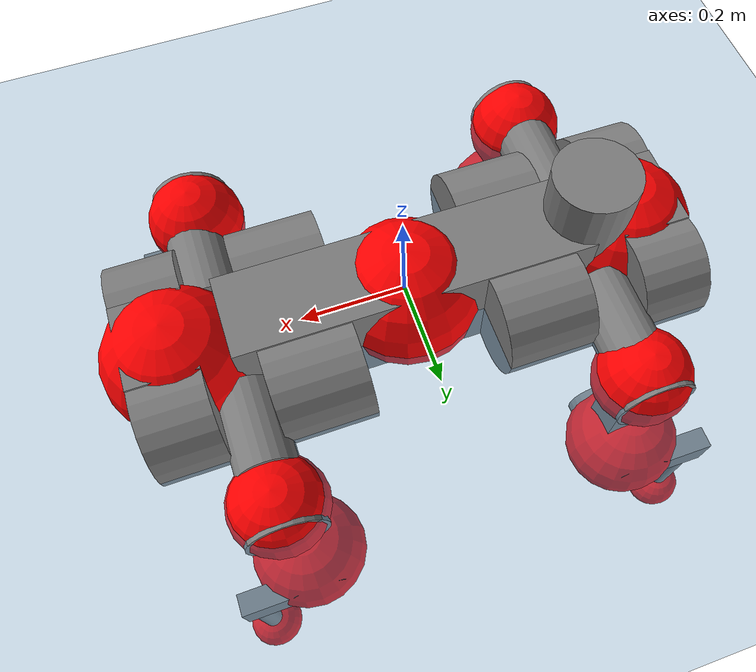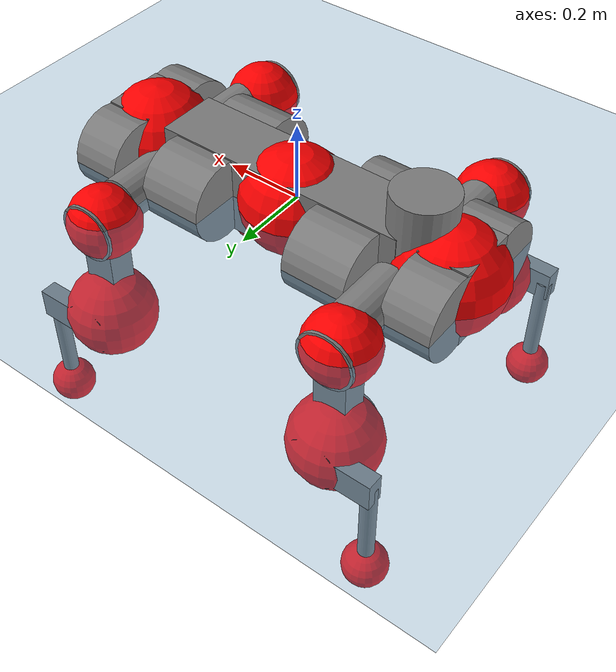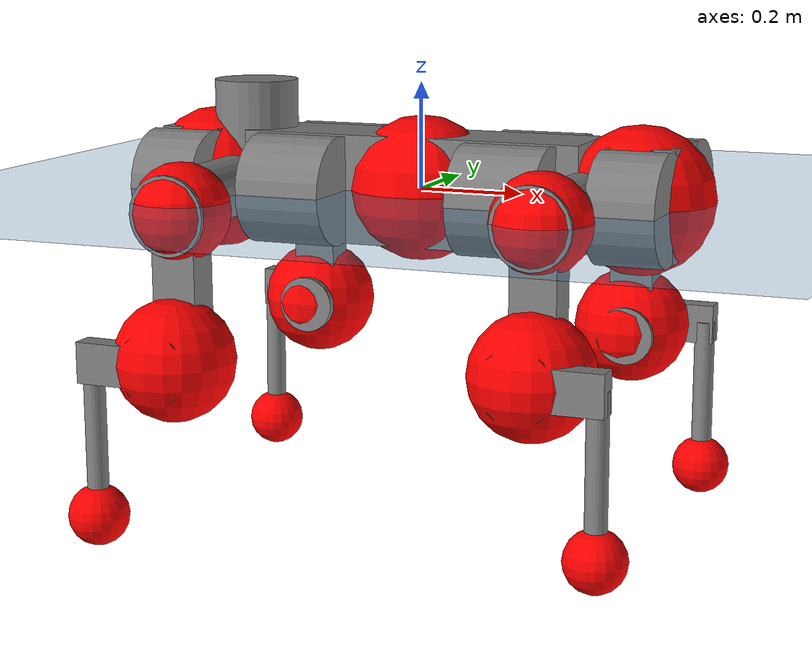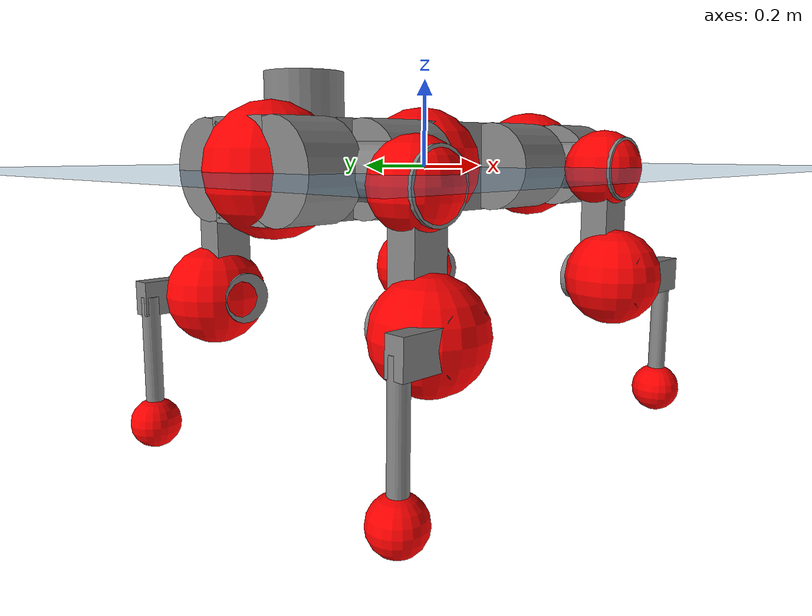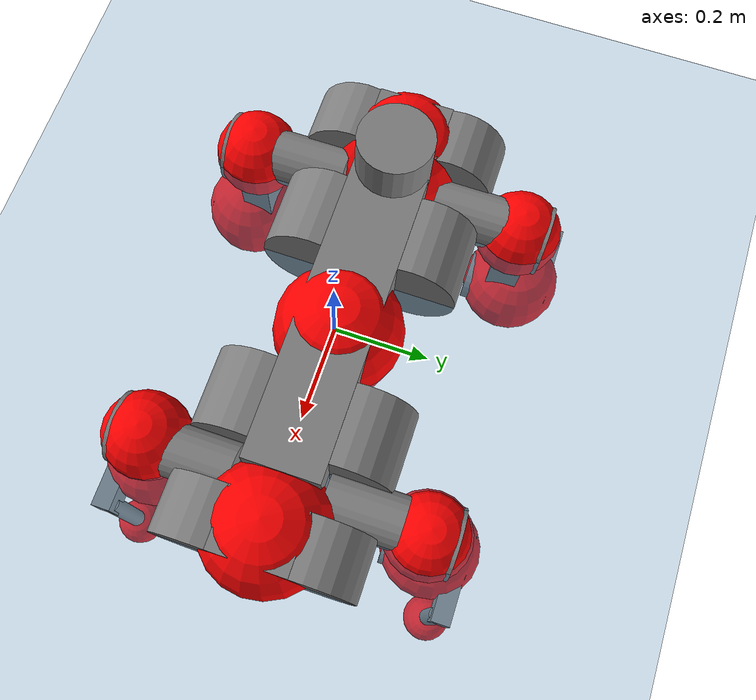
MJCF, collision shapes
<mujoco model="anymal_c">
  <compiler angle="radian" assetdir="assets" balanceinertia="true" inertiafromgeom="false"/>

  <option timestep="0.005" density="1.2" viscosity="2e-05"/>

  <size nkey="1"/>

  <visual>
    <quality shadowsize="8192"/>
    <map shadowclip="0.5"/>
  </visual>

  <default>
    <default class="/">
      <material specular="0" shininess="0.25"/>
      <geom contype="0" conaffinity="0" group="1" solref="-1000 -80"/>
      <site size="0.01 0.005 0.005" group="5"/>
      <general forcelimited="true" forcerange="-80 80" biastype="affine" gainprm="80" biasprm="0 -80 -2"/>
      <default class="anymal_c">
        <joint armature="0.01" damping="0.01" frictionloss="0.1"/>
        <default class="visual">
          <geom type="mesh" group="2"/>
          <default class="visual_zflip"/>
        </default>
        <default class="collision">
          <geom type="cylinder" group="3"/>
          <default class="foot">
            <geom size="0.03 0 0" type="sphere" condim="6" priority="1" friction="0.8 0.02 0.01" solimp="0.015 1 0.03"/>
          </default>
        </default>
      </default>
      <default class="reward_collision_sphere">
        <geom group="5" rgba="1 0 0 1"/>
      </default>
    </default>
  </default>

  <asset>
    <texture type="skybox" colorspace="auto" name="//unnamed_texture_0" builtin="gradient" rgb1="0.95 0.95 0.95" rgb2="0.95 0.95 0.95" width="100" height="600"/>
    <texture type="2d" colorspace="auto" name="texplane" builtin="checker" rgb1="0.345 0.575 0.748" rgb2="0.345 0.575 0.748" markrgb="1 1 1" width="512" height="512"/>
    <texture type="2d" colorspace="linear" name="base" file="base.png"/>
    <texture type="2d" colorspace="linear" name="top_shell" file="top_shell.png"/>
    <texture type="2d" colorspace="linear" name="bottom_shell" file="bottom_shell.png"/>
    <texture type="2d" colorspace="linear" name="remote" file="remote.png"/>
    <texture type="2d" colorspace="linear" name="hatch" file="hatch.png"/>
    <texture type="2d" colorspace="linear" name="handle" file="handle.png"/>
    <texture type="2d" colorspace="linear" name="face" file="face.png"/>
    <texture type="2d" colorspace="linear" name="battery" file="battery.png"/>
    <texture type="2d" colorspace="linear" name="lidar_cage" file="lidar_cage.png"/>
    <texture type="2d" colorspace="linear" name="depth_camera" file="depth_camera.png"/>
    <texture type="2d" colorspace="linear" name="wide_angle_camera" file="wide_angle_camera.png"/>
    <texture type="2d" colorspace="linear" name="lidar" file="lidar.png"/>
    <texture type="2d" colorspace="linear" name="drive" file="drive.png"/>
    <texture type="2d" colorspace="linear" name="hip_l" file="hip_l.png"/>
    <texture type="2d" colorspace="linear" name="shank_l" file="shank_l.png"/>
    <texture type="2d" colorspace="linear" name="foot" file="foot.png"/>
    <texture type="2d" colorspace="linear" name="thigh" file="thigh.png"/>
    <texture type="2d" colorspace="linear" name="shank_r" file="shank_r.png"/>
    <texture type="2d" colorspace="linear" name="hip_r" file="hip_r.png"/>
    <material name="MatPlane" class="/" texture="texplane" texuniform="true" texrepeat="2 2" specular="0.9" shininess="0.5"/>
    <material name="black_plastic" class="/" rgba="0.007 0.007 0.007 1"/>
    <material name="green" class="/" rgba="0.052 0.178 0.033 1"/>
    <material name="red" class="/" rgba="0.178 0.006 0.005 1"/>
    <material name="yellow" class="/" rgba="0.178 0.119 0.006 1"/>
    <material name="lwl" class="/" rgba="0.8 0.8 0.8 1"/>
    <material name="base" class="/" texture="base"/>
    <material name="top_shell" class="/" texture="top_shell"/>
    <material name="bottom_shell" class="/" texture="bottom_shell"/>
    <material name="hip_l" class="/" texture="hip_l"/>
    <material name="thigh" class="/" texture="thigh"/>
    <material name="shank_l" class="/" texture="shank_l"/>
    <material name="foot" class="/" texture="foot"/>
    <material name="hip_r" class="/" texture="hip_r"/>
    <material name="shank" class="/" texture="shank_r"/>
    <material name="hatch" class="/" texture="hatch"/>
    <material name="remote" class="/" texture="remote"/>
    <material name="handle" class="/" texture="handle"/>
    <material name="face" class="/" texture="face"/>
    <material name="depth_camera" class="/" texture="depth_camera"/>
    <material name="wide_angle_camera" class="/" texture="wide_angle_camera"/>
    <material name="battery" class="/" texture="battery"/>
    <material name="lidar_cage" class="/" texture="lidar_cage"/>
    <material name="lidar" class="/" texture="lidar"/>
    <material name="drive" class="/" texture="drive"/>
    <mesh name="base_0" class="/" file="base_0.obj"/>
    <mesh name="base_1" class="/" file="base_1.obj"/>
    <mesh name="base_2" class="/" file="base_2.obj"/>
    <mesh name="base_3" class="/" file="base_3.obj"/>
    <mesh name="base_4" class="/" file="base_4.obj"/>
    <mesh name="base_5" class="/" file="base_5.obj"/>
    <mesh name="top_shell" class="/" file="top_shell.obj"/>
    <mesh name="bottom_shell" class="/" file="bottom_shell.obj"/>
    <mesh name="remote" class="/" file="remote.obj"/>
    <mesh name="handle" class="/" file="handle.obj"/>
    <mesh name="face" class="/" file="face.obj"/>
    <mesh name="wide_angle_camera" class="/" file="wide_angle_camera.obj"/>
    <mesh name="depth_camera" class="/" file="depth_camera.obj"/>
    <mesh name="battery" class="/" file="battery.obj"/>
    <mesh name="lidar_cage" class="/" file="lidar_cage.obj"/>
    <mesh name="lidar" class="/" file="lidar.obj"/>
    <mesh name="drive" class="/" file="drive.obj"/>
    <mesh name="hip_l" class="/" file="hip_l.obj"/>
    <mesh name="thigh" class="/" file="thigh.obj"/>
    <mesh name="shank_l" class="/" file="shank_l.obj"/>
    <mesh name="foot" class="/" file="foot.obj"/>
    <mesh name="hip_r" class="/" file="hip_r.obj"/>
    <mesh name="hatch" class="/" file="hatch.obj"/>
    <mesh name="shank_r" class="/" file="shank_r.obj"/>
  </asset>

  <worldbody>
    <geom name="floor" class="/" size="100 100 0.125" type="plane" group="0" material="MatPlane"/>
    <light name="toplight_shadow" class="/" pos="0 0 5" dir="0.0990148 0.0990148 -0.990148" type="directional" ambient="0.04 0.04 0.04" diffuse="0.55 0.55 0.55" specular="0.12 0.12 0.12"/>
    <light name="toplight_fill" class="/" pos="0 0 5" dir="0.0990148 0.0990148 -0.990148" type="directional" castshadow="false" ambient="0.04 0.04 0.04" diffuse="0.3 0.3 0.3" specular="0.08 0.08 0.08"/>
    <body name="trunk" childclass="anymal_c" pos="-0.00130286 0.00897785 0.000310284" quat="1 3.27033e-05 7.00984e-05 -0.000154053">
      <inertial pos="-0.000549254 0.00972511 0.0453487" quat="0.552492 0.461046 0.50109 0.480727" mass="29.3587" diaginertia="0.538508 5.85465 0.156111"/>
      <joint name="//unnamed_joint_0" type="free" armature="0" damping="0" frictionloss="0"/>
      <geom name="//unnamed_geom_1" class="visual" material="green" mesh="base_0"/>
      <geom name="//unnamed_geom_2" class="visual" material="yellow" mesh="base_1"/>
      <geom name="//unnamed_geom_3" class="visual" material="red" mesh="base_2"/>
      <geom name="//unnamed_geom_4" class="visual" material="black_plastic" mesh="base_3"/>
      <geom name="//unnamed_geom_5" class="visual" material="lwl" mesh="base_4"/>
      <geom name="//unnamed_geom_6" class="visual" material="base" mesh="base_5"/>
      <geom name="trunk_1" class="collision" size="0.332058 0.080152 0.103053" type="box"/>
      <geom name="trunk_2" class="collision" size="0.103053 0.0830145" pos="0.206861 0.108386 0" quat="0.707107 0 0.707107 0"/>
      <geom name="trunk_3" class="collision" size="0.103053 0.0830145" pos="-0.206861 0.108386 0" quat="0.707107 0 0.707107 0"/>
      <geom name="trunk_4" class="collision" size="0.103053 0.0830145" pos="0.206861 -0.108386 0" quat="0.707107 0 0.707107 0"/>
      <geom name="trunk_5" class="collision" size="0.103053 0.0830145" pos="-0.206861 -0.108386 0" quat="0.707107 0 0.707107 0"/>
      <geom name="//unnamed_geom_12" class="visual" material="top_shell" mesh="top_shell"/>
      <geom name="//unnamed_geom_13" class="visual" material="bottom_shell" mesh="bottom_shell"/>
      <geom name="//unnamed_geom_14" class="visual" material="remote" mesh="remote"/>
      <geom name="//unnamed_geom_15" class="visual" material="handle" mesh="handle"/>
      <geom name="//unnamed_geom_16" class="visual" pos="0.394225 0 0" quat="1 0 0 0" material="face" mesh="face"/>
      <geom name="trunk_6" class="collision" size="0.0629765 0.080152 0.103053" pos="0.446534 0 0" type="box"/>
      <geom name="//unnamed_geom_18" class="collision" size="0.103053 0.0629765" pos="0.446534 0.108386 0" quat="0.707107 0 0.707107 0"/>
      <geom name="//unnamed_geom_19" class="collision" size="0.103053 0.0629765" pos="0.446534 -0.108386 0" quat="0.707107 0 0.707107 0"/>
      <geom name="//unnamed_geom_20" class="visual" pos="0.439068 0 -0.0272028" quat="0.965926 0 0.258819 0" material="depth_camera" mesh="depth_camera"/>
      <geom name="//unnamed_geom_21" class="visual" pos="0.487906 0 0.0140063" material="wide_angle_camera" mesh="wide_angle_camera"/>
      <geom name="//unnamed_geom_22" class="visual_zflip" pos="-0.394225 0 0" quat="0 0 0 1" material="face" mesh="face"/>
      <geom name="trunk_7" class="collision" size="0.0629765 0.080152 0.103053" pos="-0.446534 0 0" quat="0 0 0 1" type="box"/>
      <geom name="//unnamed_geom_24" class="collision" size="0.103053 0.0629765" pos="-0.446534 -0.108386 0" quat="0 -0.707107 0 0.707107"/>
      <geom name="//unnamed_geom_25" class="collision" size="0.103053 0.0629765" pos="-0.446534 0.108386 0" quat="0 -0.707107 0 0.707107"/>
      <geom name="//unnamed_geom_26" class="visual" pos="-0.439068 0 -0.0272028" quat="0 -0.258819 0 0.965926" material="depth_camera" mesh="depth_camera"/>
      <geom name="//unnamed_geom_27" class="visual_zflip" pos="-0.487906 0 0.0140063" quat="0 0 0 1" material="wide_angle_camera" mesh="wide_angle_camera"/>
      <geom name="//unnamed_geom_28" class="visual" material="battery" mesh="battery"/>
      <geom name="//unnamed_geom_29" class="visual" pos="0 0.126226 0.0272974" quat="0.683013 -0.183013 0.183013 0.683013" material="depth_camera" mesh="depth_camera"/>
      <geom name="//unnamed_geom_30" class="visual" pos="0 -0.126226 0.0272974" quat="0.683013 0.183013 0.183013 -0.683013" material="depth_camera" mesh="depth_camera"/>
      <geom name="//unnamed_geom_31" class="visual" pos="-0.346195 0 0.0687684" quat="1 0 0 0" material="lidar_cage" mesh="lidar_cage"/>
      <geom name="trunk_8" class="collision" size="0.080152 0.0687017" pos="-0.346195 0 0.124906"/>
      <geom name="//unnamed_geom_33" class="visual" pos="-0.346195 0.000234659 0.133046" quat="0.707107 0 0 -0.707107" material="lidar" mesh="lidar"/>
      <geom name="//unnamed_geom_34" class="visual" pos="0.28523 0.160813 1.057e-08" quat="0.258819 0.965926 0 0" material="drive" mesh="drive"/>
      <geom name="//unnamed_geom_35" class="visual" pos="0.28523 -0.160813 -1.057e-08" quat="0.258819 -0.965926 0 0" material="drive" mesh="drive"/>
      <geom name="//unnamed_geom_36" class="visual" pos="-0.28523 0.160813 -1.057e-08" quat="0 0 0.965926 -0.258819" material="drive" mesh="drive"/>
      <geom name="//unnamed_geom_37" class="visual" pos="-0.28523 -0.160813 1.057e-08" quat="0 0 -0.965926 -0.258819" material="drive" mesh="drive"/>
      <geom name="//unnamed_geom_38" class="visual" pos="0.110326 0 0.0683006" quat="1 0 0 0" material="hatch" mesh="hatch"/>
      <geom name="//unnamed_geom_39" class="reward_collision_sphere" size="0.137403"/>
      <geom name="//unnamed_geom_40" class="reward_collision_sphere" size="0.137403" pos="0.427988 0 0"/>
      <geom name="//unnamed_geom_41" class="reward_collision_sphere" size="0.137403" pos="-0.427988 0 0"/>
      <site name="imu" pos="0.193414 -0.0184664 0.0881095" size="0.0114503"/>
      <camera name="track" pos="0 -3.09675 0" quat="0.707107 0.707107 0 0" mode="trackcom"/>
      <camera name="ego_camera" pos="0.427988 0 -0.037425" quat="-0.5 -0.5 0.5 0.5"/>
      <body name="LF_HIP" pos="0.277817 0.147853 -0.0109501" quat="0.258844 0.965908 0.00329376 0.00335794">
        <inertial pos="0.0545856 -0.023228 -0.0132147" quat="-0.128261 0.709808 -0.135259 0.679284" mass="4.56007" diaginertia="0.00451185 0.0479567 0.00228616"/>
        <joint name="LF_HAA" pos="0 0 0" axis="0.99999 0.00136516 -0.00437438" range="-0.989854 0.373164" armature="0.0113602" damping="0.0523753" frictionloss="0.0711945"/>
        <geom name="//unnamed_geom_42" class="visual" pos="0 0.000621785 -0.000102128" quat="0.258819 -0.965926 0 0" material="hip_l" mesh="hip_l"/>
        <geom name="//unnamed_geom_43" class="visual" pos="0.05697 -0.0766778 -0.0397377" quat="0.183013 -0.683013 0.683013 0.183013" material="drive" mesh="drive"/>
        <geom name="//unnamed_geom_44" class="collision" size="0.0572514 0.080152" pos="0.05697 -0.0185183 -0.00646049" quat="-0.353553 -0.612372 0.612372 -0.353553"/>
        <body name="LF_THIGH" pos="0.0582718 -0.125658 -0.0376468" quat="0.186118 -0.680812 0.684205 0.183628">
          <inertial pos="0.0212596 -0.00665082 -0.230577" quat="0.989679 -0.0401011 -0.117019 0.072345" mass="4.6001" diaginertia="0.0238608 0.270402 0.00314569"/>
          <joint name="LF_HFE" pos="0 0 0" axis="0.998936 -0.00274399 -0.0460431" stiffness="0.0129362" range="-3.24341 2.90788" armature="0.00593285" damping="0.00530598" frictionloss="0.0923478"/>
          <geom name="//unnamed_geom_45" class="visual" pos="-0.0118837 -1.8726e-05 0" quat="0.707107 0 0 -0.707107" material="thigh" mesh="thigh"/>
          <geom name="//unnamed_geom_46" class="collision" size="0.0744268 0.0458011" pos="0.0380434 0 0" quat="0.5 0.5 -0.5 -0.5"/>
          <geom name="//unnamed_geom_47" class="collision" size="0.0429386 0.0343508 0.161809" pos="0.0285325 0 -0.132217" quat="0.707107 0 0 -0.707107" type="box"/>
          <geom name="//unnamed_geom_48" class="visual" pos="0.0953938 0 -0.266653" quat="1 0 0 0" material="drive" mesh="drive"/>
          <geom name="//unnamed_geom_49" class="collision" size="0.0572514 0.080152" pos="0.0288179 0 -0.266653" quat="0.707107 0 0.707107 0"/>
          <geom name="//unnamed_geom_50" class="reward_collision_sphere" size="0.0916023" pos="0.0237771 0 0"/>
          <body name="LF_SHANK" pos="0.0985122 0.0114386 -0.262836" quat="0.999996 0.00187856 0.00111306 -0.00193111">
            <inertial pos="-0.00209568 -0.0951171 -0.0627168" quat="0.993218 -0.112284 0.00109868 -0.0301591" mass="0.900965" diaginertia="0.00892257 0.071072 0.000941414"/>
            <joint name="LF_KFE" pos="0 0 0" axis="0.999953 0.00946805 0.00231282" stiffness="0.00152266" range="-2.88987 3.16878" armature="0.0153251" damping="0.0144804" frictionloss="0.10986"/>
            <geom name="//unnamed_geom_51" class="visual" pos="-0.00387502 -0.0206618 0" quat="0.707107 0 0 -0.707107" material="shank_l" mesh="shank_l"/>
            <geom name="LF_kfe_act" class="collision" size="0.0687017 0.0229006" pos="0.0190217 0 0" quat="0.5 0.5 -0.5 -0.5"/>
            <geom name="//unnamed_geom_53" class="collision" size="0.065838 0.0386447 0.0217555" pos="0.0190217 -0.08903 0" quat="0.5 0.5 -0.5 -0.5" type="box"/>
            <geom name="//unnamed_geom_54" class="visual" pos="0.0124126 -0.142838 -0.316213" quat="0.382683 0 0 -0.92388" material="foot" mesh="foot"/>
            <geom name="LF_calf" class="collision" size="0.020038 0.161738" pos="0.0124117 -0.13618 -0.158107" quat="0.707107 0 0 -0.707107"/>
            <geom name="LF_foot" class="foot" size="0.030083" pos="0.0124117 -0.13618 -0.295162" quat="0.707107 0 0 -0.707107"/>
            <geom name="//unnamed_geom_57" class="reward_collision_sphere" size="0.114503" pos="-0.0475542 0 0"/>
            <geom name="//unnamed_geom_58" class="reward_collision_sphere" size="0.0572514" pos="0.0124117 -0.13618 -0.295162"/>
            <site name="LF_foot" class="foot" pos="0.0124117 -0.13618 -0.295162" quat="0.707107 0 0 -0.707107" size="0.0114503"/>
          </body>
        </body>
      </body>
      <body name="RF_HIP" pos="0.287513 -0.155647 0.00445724" quat="0.259017 -0.965872 0.000390955 -0.00082949">
        <inertial pos="0.0577189 0.0219391 -0.00971004" quat="0.138708 0.677786 0.126625 0.710867" mass="4.74707" diaginertia="0.00475275 0.0514887 0.00209456"/>
        <joint name="RF_HAA" pos="0 0 0" axis="0.999323 0.0161369 0.0330484" stiffness="0.016573" range="-0.514347 0.699754" armature="0.0100362" damping="0" frictionloss="0.0941216"/>
        <geom name="//unnamed_geom_59" class="visual" pos="0 -0.000621781 -0.000102127" quat="0.258819 0.965926 0 0" material="hip_r" mesh="hip_r"/>
        <geom name="//unnamed_geom_60" class="visual" pos="0.05697 0.0766778 -0.0397377" quat="0.183013 0.683013 0.683013 -0.183013" material="drive" mesh="drive"/>
        <geom name="//unnamed_geom_61" class="collision" size="0.0572514 0.080152" pos="0.05697 0.0185183 -0.00646049" quat="-0.353553 0.612372 0.612372 0.353553"/>
        <body name="RF_THIGH" pos="0.0455342 0.0993164 -0.0455071" quat="0.185298 0.682072 0.68355 -0.182211">
          <inertial pos="0.0347151 0.0131037 -0.230581" quat="0.994211 -0.0284358 -0.0809854 0.0646317" mass="3.63745" diaginertia="0.0207826 0.234193 0.00276571"/>
          <joint name="RF_HFE" pos="0 0 0" axis="0.999741 0.0206699 0.00947136" stiffness="0.0189596" range="-2.90403 3.15208" armature="0.0114765" damping="0" frictionloss="0.113509"/>
          <geom name="//unnamed_geom_62" class="visual" pos="-0.0118837 -1.8726e-05 0" quat="0.707107 0 0 -0.707107" material="thigh" mesh="thigh"/>
          <geom name="//unnamed_geom_63" class="collision" size="0.0744268 0.0458011" pos="0.0380434 0 0" quat="0.5 0.5 0.5 0.5"/>
          <geom name="//unnamed_geom_64" class="collision" size="0.0429386 0.0343508 0.161809" pos="0.0285325 0 -0.132217" quat="0.707107 0 0 0.707107" type="box"/>
          <geom name="//unnamed_geom_65" class="visual" pos="0.0953938 0 -0.266653" quat="1 0 0 0" material="drive" mesh="drive"/>
          <geom name="//unnamed_geom_66" class="collision" size="0.0572514 0.080152" pos="0.0288179 0 -0.266653" quat="0.707107 0 0.707107 0"/>
          <geom name="//unnamed_geom_67" class="reward_collision_sphere" size="0.0916023" pos="0.0237771 0 0"/>
          <body name="RF_SHANK" pos="0.107344 0.000853958 -0.259824" quat="0.999987 0.00109713 0.00492113 0.00109998">
            <inertial pos="0.00132355 0.0960113 -0.0832337" quat="0.989113 0.142482 -0.022028 0.0294799" mass="0.882723" diaginertia="0.00769231 0.0828392 0.000767144"/>
            <joint name="RF_KFE" pos="0 0 0" axis="0.997939 0.0409996 -0.0493552" stiffness="0.0218654" range="-3.15163 3.16846" armature="0.00531243" damping="0" frictionloss="0.172796"/>
            <geom name="//unnamed_geom_68" class="visual" pos="-0.003875 0.0206618 0" quat="0.707107 0 0 0.707107" material="shank" mesh="shank_r"/>
            <geom name="RF_kfe_act" class="collision" size="0.0687017 0.0229006" pos="0.0190217 0 0" quat="0.5 0.5 0.5 0.5"/>
            <geom name="//unnamed_geom_70" class="collision" size="0.065838 0.0386447 0.0217555" pos="0.0190217 0.08903 0" quat="0.5 0.5 0.5 0.5" type="box"/>
            <geom name="//unnamed_geom_71" class="visual" pos="0.0124107 0.142838 -0.316213" quat="0.382683 0 0 0.92388" material="foot" mesh="foot"/>
            <geom name="RF_calf" class="collision" size="0.020038 0.161738" pos="0.0124117 0.13618 -0.158107" quat="0.707107 0 0 0.707107"/>
            <geom name="RF_foot" class="foot" size="0.0384655" pos="0.0124117 0.13618 -0.295162" quat="0.707107 0 0 0.707107"/>
            <geom name="//unnamed_geom_74" class="reward_collision_sphere" size="0.114503" pos="-0.0475542 0 0"/>
            <geom name="//unnamed_geom_75" class="reward_collision_sphere" size="0.0572514" pos="0.0124117 0.13618 -0.295162"/>
            <site name="RF_foot" class="foot" pos="0.0124117 0.13618 -0.295162" quat="0.707107 0 0 0.707107" size="0.0114503"/>
          </body>
        </body>
      </body>
      <body name="LH_HIP" pos="-0.284896 0.161638 0.000858505" quat="-0.00162485 -0.00031739 0.96582 -0.259209">
        <inertial pos="0.0555687 0.0333638 -0.0137695" quat="0.124013 0.679251 0.135987 0.710455" mass="3.80313" diaginertia="0.00436091 0.0414212 0.00218844"/>
        <joint name="LH_HAA" pos="0 0 0" axis="0.999923 -0.00326775 0.0119809" stiffness="0.0101823" range="-0.527971 0.807835" armature="0.0114641" damping="0.0216861" frictionloss="0.106852"/>
        <geom name="//unnamed_geom_76" class="visual" pos="0 -0.000621781 -0.000102127" quat="-0.258819 -0.965926 0 0" material="hip_r" mesh="hip_r"/>
        <geom name="//unnamed_geom_77" class="visual" pos="0.05697 0.0766778 -0.0397377" quat="0.183013 0.683013 0.683013 -0.183013" material="drive" mesh="drive"/>
        <geom name="//unnamed_geom_78" class="collision" size="0.0572514 0.080152" pos="0.05697 0.0185183 -0.00646049" quat="-0.353553 0.612372 0.612372 0.353553"/>
        <body name="LH_THIGH" pos="0.0638828 0.107716 -0.0273894" quat="0.182387 0.682815 0.683262 -0.183445">
          <inertial pos="0.0309227 -0.000219317 -0.217884" quat="0.99101 0.0230763 -0.0807742 0.104129" mass="3.65348" diaginertia="0.0230671 0.239057 0.00284447"/>
          <joint name="LH_HFE" pos="0 0 0" axis="0.999884 0.0125324 -0.00862813" range="-2.96176 3.00117" armature="0.0135397" damping="0.0581463" frictionloss="0.113167"/>
          <geom name="//unnamed_geom_79" class="visual" pos="-0.0118837 -1.8726e-05 0" quat="0.707107 0 0 -0.707107" material="thigh" mesh="thigh"/>
          <geom name="//unnamed_geom_80" class="collision" size="0.0744268 0.0458011" pos="0.0380434 0 0" quat="0.5 0.5 -0.5 -0.5"/>
          <geom name="//unnamed_geom_81" class="collision" size="0.0429386 0.0343508 0.161809" pos="0.0285325 0 -0.132217" quat="0.707107 0 0 -0.707107" type="box"/>
          <geom name="//unnamed_geom_82" class="visual" pos="0.0953938 0 -0.266653" quat="1 0 0 0" material="drive" mesh="drive"/>
          <geom name="//unnamed_geom_83" class="collision" size="0.0572514 0.080152" pos="0.0288179 0 -0.266653" quat="0.707107 0 0.707107 0"/>
          <geom name="//unnamed_geom_84" class="reward_collision_sphere" size="0.0916023" pos="0.0237771 0 0"/>
          <body name="LH_SHANK" pos="0.102013 0.0132402 -0.267488" quat="0.999999 0.00035577 0.000765732 -0.000593279">
            <inertial pos="0.00486315 0.0940913 -0.0750296" quat="0.992606 0.118854 -0.00423915 0.0242564" mass="0.740127" diaginertia="0.00629856 0.0744874 0.000740982"/>
            <joint name="LH_KFE" pos="0 0 0" axis="0.999275 0.0370035 -0.00892174" stiffness="0.00611613" range="-3.39729 3.31517" armature="0.0122203" damping="0.0335737" frictionloss="0.106277"/>
            <geom name="//unnamed_geom_85" class="visual" pos="-0.003875 0.0206618 0" quat="-0.707107 0 0 -0.707107" material="shank" mesh="shank_r"/>
            <geom name="LH_kfe_act" class="collision" size="0.0687017 0.0229006" pos="0.0190217 0 0" quat="0.5 0.5 -0.5 -0.5"/>
            <geom name="//unnamed_geom_87" class="collision" size="0.065838 0.0386447 0.0217555" pos="0.0190217 0.08903 0" quat="0.5 0.5 -0.5 -0.5" type="box"/>
            <geom name="//unnamed_geom_88" class="visual" pos="0.0124107 0.142838 -0.316213" quat="-0.382683 0 0 -0.92388" material="foot" mesh="foot"/>
            <geom name="LH_calf" class="collision" size="0.020038 0.161738" pos="0.0124117 0.13618 -0.158107" quat="0.707107 0 0 -0.707107"/>
            <geom name="LH_foot" class="foot" size="0.0293426" pos="0.0124117 0.13618 -0.295162" quat="0.707107 0 0 -0.707107"/>
            <geom name="//unnamed_geom_91" class="reward_collision_sphere" size="0.114503" pos="-0.0475542 0 0"/>
            <geom name="//unnamed_geom_92" class="reward_collision_sphere" size="0.0572514" pos="0.0124117 0.13618 -0.295162"/>
            <site name="LH_foot" class="foot" pos="0.0124117 0.13618 -0.295162" quat="0.707107 0 0 -0.707107" size="0.0114503"/>
          </body>
        </body>
      </body>
      <body name="RH_HIP" pos="-0.288277 -0.161039 0.00229834" quat="0.000378941 -0.000422725 -0.964593 -0.263741">
        <inertial pos="0.0514724 -0.0337916 -0.000384928" quat="-0.127411 0.706798 -0.126395 0.684272" mass="3.8927" diaginertia="0.00374085 0.038346 0.00186084"/>
        <joint name="RH_HAA" pos="0 0 0" axis="0.998583 0.0348646 -0.0401967" range="-0.714895 0.718063" armature="0.011228" damping="0.0233557" frictionloss="0.114711"/>
        <geom name="//unnamed_geom_93" class="visual" pos="0 0.000621785 -0.000102128" quat="-0.258819 0.965926 0 0" material="hip_l" mesh="hip_l"/>
        <geom name="//unnamed_geom_94" class="visual" pos="0.05697 -0.0766778 -0.0397377" quat="-0.183013 0.683013 -0.683013 -0.183013" material="drive" mesh="drive"/>
        <geom name="//unnamed_geom_95" class="collision" size="0.0572514 0.080152" pos="0.05697 -0.0185183 -0.00646049" quat="0.353553 0.612372 -0.612372 0.353553"/>
        <body name="RH_THIGH" pos="0.0588521 -0.120599 -0.0434132" quat="-0.184434 0.686482 -0.679778 -0.180635">
          <inertial pos="0.029881 0.0112098 -0.23647" quat="0.993287 0.00327188 -0.079466 0.084002" mass="5.05476" diaginertia="0.0256228 0.292671 0.00324128"/>
          <joint name="RH_HFE" pos="0 0 0" axis="0.998305 -0.00116891 -0.0581907" stiffness="0.0189078" range="-3.15764 3.01708" armature="0.0109226" damping="0.00969509" frictionloss="0.108104"/>
          <geom name="//unnamed_geom_96" class="visual" pos="-0.0118837 -1.8726e-05 0" quat="0.707107 0 0 -0.707107" material="thigh" mesh="thigh"/>
          <geom name="//unnamed_geom_97" class="collision" size="0.0744268 0.0458011" pos="0.0380434 0 0" quat="0.5 0.5 0.5 0.5"/>
          <geom name="//unnamed_geom_98" class="collision" size="0.0429386 0.0343508 0.161809" pos="0.0285325 0 -0.132217" quat="0.707107 0 0 0.707107" type="box"/>
          <geom name="//unnamed_geom_99" class="visual" pos="0.0953938 0 -0.266653" quat="1 0 0 0" material="drive" mesh="drive"/>
          <geom name="//unnamed_geom_100" class="collision" size="0.0572514 0.080152" pos="0.0288179 0 -0.266653" quat="0.707107 0 0.707107 0"/>
          <geom name="//unnamed_geom_101" class="reward_collision_sphere" size="0.0916023" pos="0.0237771 0 0"/>
          <body name="RH_SHANK" pos="0.109477 -0.00197762 -0.26825" quat="0.999997 -0.0023212 0.000923745 -0.000283982">
            <inertial pos="-0.00833557 -0.0941392 -0.0727564" quat="0.993398 -0.11196 0.0171356 -0.0182361" mass="0.891176" diaginertia="0.00691814 0.0866454 0.000801746"/>
            <joint name="RH_KFE" pos="0 0 0" axis="0.998272 -0.0213129 0.0547572" stiffness="0.0279826" range="-2.93893 2.90866" armature="0.0178389" damping="0.00323646" frictionloss="0.122843"/>
            <geom name="//unnamed_geom_102" class="visual" pos="-0.00387502 -0.0206618 0" quat="0.707107 0 0 -0.707107" material="shank_l" mesh="shank_l"/>
            <geom name="RH_kfe_act" class="collision" size="0.0687017 0.0229006" pos="0.0190217 0 0" quat="0.5 0.5 0.5 0.5"/>
            <geom name="//unnamed_geom_104" class="collision" size="0.065838 0.0386447 0.0217555" pos="0.0190217 -0.08903 0" quat="0.5 0.5 0.5 0.5" type="box"/>
            <geom name="//unnamed_geom_105" class="visual" pos="0.0124126 -0.142838 -0.316213" quat="0.382683 0 0 -0.92388" material="foot" mesh="foot"/>
            <geom name="RH_calf" class="collision" size="0.020038 0.161738" pos="0.0124117 -0.13618 -0.158107" quat="0.707107 0 0 0.707107"/>
            <geom name="RH_foot" class="foot" size="0.0423139" pos="0.0124117 -0.13618 -0.295162" quat="0.707107 0 0 0.707107"/>
            <geom name="//unnamed_geom_108" class="reward_collision_sphere" size="0.114503" pos="-0.0475542 0 0"/>
            <geom name="//unnamed_geom_109" class="reward_collision_sphere" size="0.0572514" pos="0.0124117 -0.13618 -0.295162"/>
            <site name="RH_foot" class="foot" pos="0.0124117 -0.13618 -0.295162" quat="0.707107 0 0 0.707107" size="0.0114503"/>
          </body>
        </body>
      </body>
    </body>
  </worldbody>

  <contact>
    <pair class="/" geom1="floor" geom2="LF_foot" name="//unnamed_contact_0"/>
    <pair class="/" geom1="floor" geom2="RF_foot" name="//unnamed_contact_1"/>
    <pair class="/" geom1="floor" geom2="LH_foot" name="//unnamed_contact_2"/>
    <pair class="/" geom1="floor" geom2="RH_foot" name="//unnamed_contact_3"/>
  </contact>

  <actuator>
    <general name="LF_HAA" class="/" joint="LF_HAA" forcerange="-45.6763 45.6763" gainprm="64.9256" biasprm="0 -64.9256 -2.0722"/>
    <general name="LF_HFE" class="/" joint="LF_HFE" forcerange="-117.744 117.744" gainprm="64.9256" biasprm="0 -64.9256 -2.0722"/>
    <general name="LF_KFE" class="/" joint="LF_KFE" forcerange="-101.682 101.682" gainprm="64.9256" biasprm="0 -64.9256 -2.0722"/>
    <general name="RF_HAA" class="/" joint="RF_HAA" forcerange="-51.4479 51.4479" gainprm="64.9256" biasprm="0 -64.9256 -2.0722"/>
    <general name="RF_HFE" class="/" joint="RF_HFE" forcerange="-51.3731 51.3731" gainprm="64.9256" biasprm="0 -64.9256 -2.0722"/>
    <general name="RF_KFE" class="/" joint="RF_KFE" forcerange="-66.064 66.064" gainprm="64.9256" biasprm="0 -64.9256 -2.0722"/>
    <general name="LH_HAA" class="/" joint="LH_HAA" forcerange="-98.3349 98.3349" gainprm="64.9256" biasprm="0 -64.9256 -2.0722"/>
    <general name="LH_HFE" class="/" joint="LH_HFE" forcerange="-90.9746 90.9746" gainprm="64.9256" biasprm="0 -64.9256 -2.0722"/>
    <general name="LH_KFE" class="/" joint="LH_KFE" forcerange="-113.98 113.98" gainprm="64.9256" biasprm="0 -64.9256 -2.0722"/>
    <general name="RH_HAA" class="/" joint="RH_HAA" forcerange="-134.534 134.534" gainprm="64.9256" biasprm="0 -64.9256 -2.0722"/>
    <general name="RH_HFE" class="/" joint="RH_HFE" forcerange="-93.3357 93.3357" gainprm="64.9256" biasprm="0 -64.9256 -2.0722"/>
    <general name="RH_KFE" class="/" joint="RH_KFE" forcerange="-91.5729 91.5729" gainprm="64.9256" biasprm="0 -64.9256 -2.0722"/>
  </actuator>

  <sensor>
    <gyro site="imu" name="imu_angular_velocity"/>
    <velocimeter site="imu" name="imu_linear_velocity"/>
    <framelinvel objtype="site" objname="LF_foot" name="LF_foot_global_linear_velocity"/>
    <framelinvel objtype="site" objname="RF_foot" name="RF_foot_global_linear_velocity"/>
    <framelinvel objtype="site" objname="LH_foot" name="LH_foot_global_linear_velocity"/>
    <framelinvel objtype="site" objname="RH_foot" name="RH_foot_global_linear_velocity"/>
  </sensor>

  <keyframe>
    <key name="home" qpos="0 0 0.55 1 0 0 0 0 0.4 -0.8 0 -0.4 0.8 0 -0.4 0.8 0 0.4 -0.8"/>
  </keyframe>
</mujoco>
